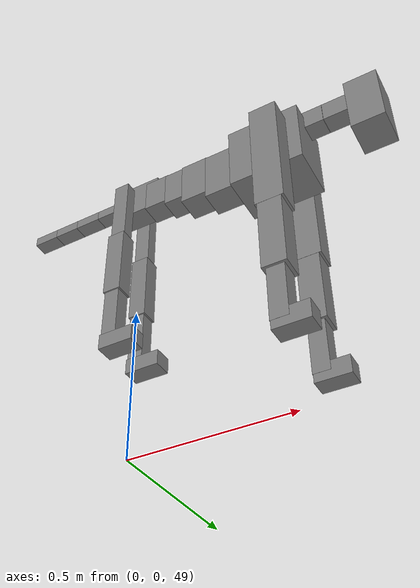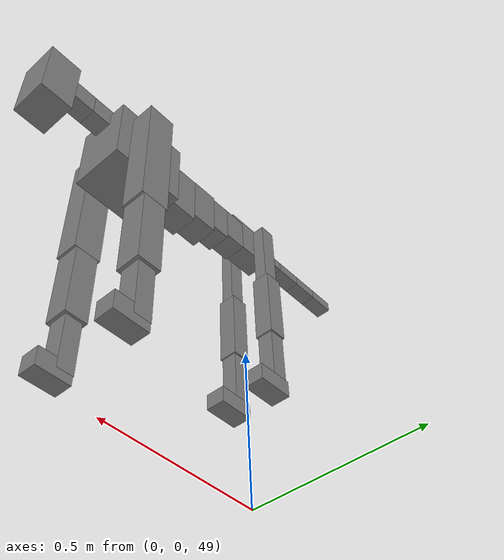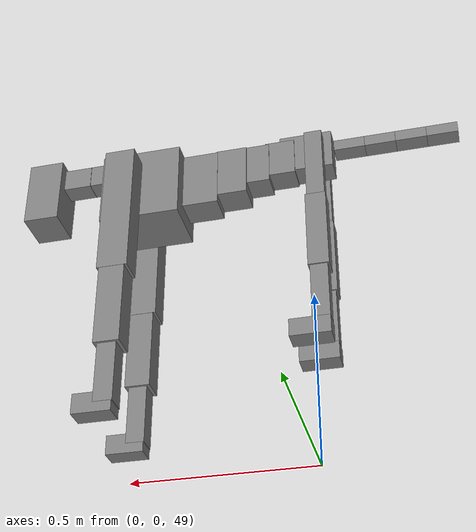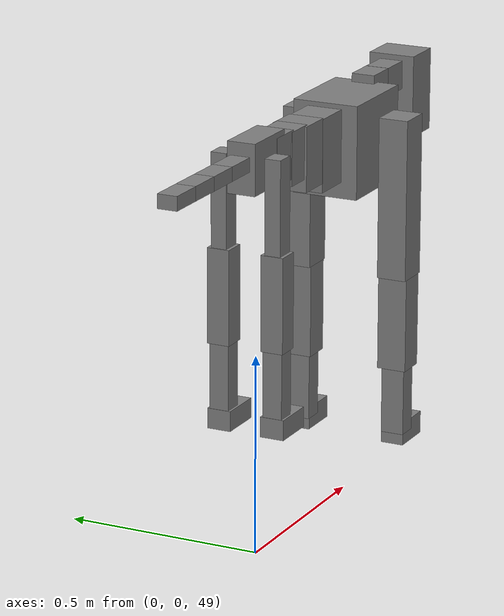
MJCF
<mujoco model="dog">

    <default>
        <joint armature="0.02" stiffness="1" damping="0.2" limited="true"/>
        <geom condim="3" friction="1 0.05 0.05" margin="0.01"/>
        <motor ctrllimited="true" ctrlrange="-1.0 1.0" forcelimited="true" gear="50"/>
    </default>

    <compiler inertiafromgeom="true" angle="radian"/>

    <option timestep="0.016" iterations="50" tolerance="1e-10" solver="Newton" jacobian="dense" cone="pyramidal"/>

    <size nconmax="20000" njmax="60000" nstack="5000000"/>
    <visual>
        <map force="0.1" zfar="30"/>
        <rgba haze="0.15 0.25 0.35 1"/>
        <quality shadowsize="2048"/>
        <global offwidth="800" offheight="800"/>
    </visual>

    <asset>
        <texture type="skybox" builtin="gradient" rgb1="0.3 0.5 0.7" rgb2="0 0 0" width="512" height="512"/>
        <texture name="texplane" type="2d" builtin="checker" rgb1=".2 .3 .4" rgb2=".1 0.15 0.2" width="512" height="512"
                 mark="cross" markrgb=".8 .8 .8"/>
        <texture name="texgeom" type="cube" builtin="flat" mark="cross" width="127" height="1278" rgb1="0.8 0.6 0.4"
                 rgb2="0.8 0.6 0.4" markrgb="1 1 1" random="0.01"/>

        <material name="matplane" reflectance="0.3" texture="texplane" texrepeat="1 1" texuniform="true"/>
        <material name="matgeom" texture="texgeom" texuniform="true" rgba="0.8 0.6 .4 1"/>
    </asset>

    <worldbody>
        <geom name="floor" pos="0 0 0" size="0 0 .25" type="plane" material="matplane" condim="3"/>

        <light directional="false" diffuse=".2 .2 .2" specular="0 0 0" pos="0 0 5" dir="0 0 -1" castshadow="false"/>
        <light mode="targetbodycom" target="torso" directional="false" diffuse=".8 .8 .8" specular="0.3 0.3 0.3"
               pos="0 0 4.0" dir="0 0 -1"/>

        <body name="root" pos="0 0 50">
            <freejoint name="root_1"/>
            <geom type="box" pos="0 0 -0.02" size="0.0774  0.0358  0.063" density="2030"/>

            <body name="spine1" pos="0.054 0 0">
                <joint name="spine1_y" axis="0 1 0" range="0 0.7" limited="true"/>
                <geom type="box" pos="0.02375 0 -0.03" size="0.04375  0.0375  0.05985" density="2030"/>

                <body name="spine2" pos="0.0612 0 0">
                    <joint name="spine2_y" axis="0 1 0" range="-0.15 0.15" limited="true"/>
                    <geom type="box" pos="0.03555  0  -0.04" size="0.04055  0.039  0.06615" density="2030"/>

                    <body name="spine3" pos="0.0730 0 0">
                        <joint name="spine3_y" axis="0 1 0" range="-0.15 0.15" limited="true"/>
                        <geom type="box" pos="0.03555  0  -0.057" size="0.04555  0.0445  0.081" density="2030"/>

                        <body name="spine4" pos="0.0780 0 0">
                            <joint name="spine4_y" axis="0 1 0" range="-0.15 0.15" limited="true"/>
                            <geom type="box" pos="0.05265  0  -0.07" size="0.05265  0.045  0.09135" density="2030"/>

                            <body name="torso" pos="0.1082 0 0">
                                <joint name="torso_y" axis="0 1 0" range="-0.15 0.15" limited="true"/>
                                <geom type="box" pos="0.11925  0  -0.085" size="0.11925  0.085  0.11745"
                                      density="2030"/>

                                <body name="neck1" pos="0.2160  0   0.0180">
                                    <joint name="neck1_y" axis="0 1 0" range="-1.2  -1" limited="true"/>
                                    <geom type="box" pos="0.0423  0  0" size="0.0423  0.03  0.036" density="2325"/>

                                    <body name="neck2" pos="0.0853  0  0">
                                        <joint name="neck2_y" axis="0 1 0" range="0.1  0" limited="true"/>
                                        <geom type="box" pos="0.0423  0  0" size="0.0423  0.03  0.036" density="2325"/>

                                        <body name="head" pos="0.0853  0  0">
                                            <joint name="head_y" axis="0 1 0" range="-0.3  -0.2" limited="true"/>
                                            <geom type="box" pos="0.0531  0  -0.055" size="0.0531  0.06  0.1044"
                                                  density="4030"/>

                                        </body>
                                    </body>
                                </body>

                                <body name="front_shoulder" pos="0.156  0   -0.0480">
                                    <joint name="front_shoulder_y" axis="0 1 0" range="-1 1.5" limited="true"/>
                                    <geom type="box" pos="0 0.13 -0.1769" size="0.0440  0.0376  0.2036" density="1158"/>
                                    <geom type="box" pos="0 -0.13 -0.1769" size="0.0440  0.0376  0.2036"
                                          density="1158"/>

                                    <body name="front_elbow" pos="0  0  -0.3539">
                                        <joint name="front_elbow_y" axis="0 1 0" range="-2 0" limited="true"/>
                                        <geom type="box" pos="0 0.13 -0.1317" size="0.0366  0.0374  0.1317"
                                              density="1081"/>
                                        <geom type="box" pos="0 -0.13 -0.1317" size="0.0366  0.0374  0.1317"
                                              density="1081"/>

                                        <body name="front_wrist" pos="0  0  -0.2634">
                                            <joint name="front_wrist_y" axis="0 1 0" range="-0.2 0" limited="true"/>
                                            <geom type="box" pos="0 0.13 -0.0784" size="0.0266  0.0295  0.0915"
                                                  density="1664"/>
                                            <geom type="box" pos="0 -0.13 -0.0784" size="0.0266  0.0295  0.0915"
                                                  density="1664"/>

                                            <body name="front_finger_end" pos="0  0  -0.1567">
                                                <joint name="front_finger_y" axis="0 1 0" range="-0.4 1"
                                                       limited="true"/>
                                                <geom type="box" pos="0.0294  0.13  -0.0134"
                                                      size="0.0539  0.0294  0.0284" density="1515"/>
                                                <geom type="box" pos="0.0294  -0.13  -0.0134"
                                                      size="0.0539  0.0294  0.0284" density="1515"/>

                                            </body>

                                        </body>
                                    </body>
                                </body>

                            </body>
                        </body>
                    </body>
                </body>
            </body>

            <body name="back_hip" pos="-0.03 0 -0.018">
                <joint name="back_hip_y" axis="0 1 0" range="-1.5 0.3" limited="true"/>
                <geom type="box" pos="0 0.07 -0.1127" size="0.0255  0.0200  0.1355" density="1154"/>
                <geom type="box" pos="0 -0.07 -0.1127" size="0.0255  0.0200  0.1355" density="1154"/>

                <body name="back_knee" pos="0  0  -0.2254">
                    <joint name="back_knee_y" axis="0 1 0" range="0 2.8" limited="true"/>
                    <geom type="box" pos="0 0.07 -0.1025" size="0.0290  0.0286  0.1181" density="1227"/>
                    <geom type="box" pos="0 -0.07 -0.1025" size="0.0290  0.0286  0.1181" density="1227"/>

                    <body name="back_ankle" pos="0  0  -0.2050">
                        <joint name="back_ankle_y" axis="0 1 0" range="-2.2 0" limited="true"/>
                        <geom type="box" pos="0 0.07 -0.0971" size="0.0244  0.0244  0.1084" density="1284"/>
                        <geom type="box" pos="0 -0.07 -0.0971" size="0.0244  0.0244  0.1084" density="1284"/>

                        <body name="back_toe_end" pos="0  0  -0.1942">
                            <joint name="back_toe_y" axis="0 1 0" range="-0.4 1" limited="true"/>
                            <geom type="box" pos="0.0302  0.07  -0.0103" size="0.0555  0.0302  0.0253" density="1515"/>
                            <geom type="box" pos="0.0302  -0.07  -0.0103" size="0.0555  0.0302  0.0253" density="1515"/>

                        </body>
                    </body>
                </body>
            </body>

            <body name="tail1" pos="-0.074 0 -0.006">
                <joint name="tail1_y" axis="0 1 0" range="-0.2 0.2" limited="true"/>
                <geom type="box" pos="-0.0536  0  0" size="0.045  0.025  0.0175" density="1587"/>

                <body name="tail2" pos="-0.09 0 0">
                    <joint name="tail2_y" axis="0 1 0" range="-0.2 0.2" limited="true"/>
                    <geom type="box" pos="-0.0536  0  0" size="0.045  0.025  0.0175" density="1587"/>

                    <body name="tail3" pos="-0.09 0 0">
                        <joint name="tail3_y" axis="0 1 0" range="-0.2 0.2" limited="true"/>
                        <geom type="box" pos="-0.0536  0  0" size="0.045  0.025  0.0175" density="1587"/>

                        <body name="tail4" pos="-0.09 0 0">
                            <joint name="tail4_y" axis="0 1 0" range="-0.2 0.2" limited="true"/>
                            <geom type="box" pos="-0.0536  0  0" size="0.045  0.025  0.0175" density="1587"/>

                        </body>
                    </body>
                </body>
            </body>
        </body>
    </worldbody>

    <actuator>
        <motor joint="spine1_y" forcerange="-150 150     "/>
        <motor joint="spine2_y" forcerange="-150 150     "/>
        <motor joint="spine3_y" forcerange="-150 150     "/>
        <motor joint="spine4_y" forcerange="-150 150     "/>
        <motor joint="torso_y" forcerange="-150 150     "/>
        <motor joint="neck1_y" forcerange="-100 100       "/>
        <motor joint="neck2_y" forcerange="-100 100       "/>
        <motor joint="head_y" forcerange="-150 150       "/>
        <motor joint="front_shoulder_y" forcerange="-178.02 172.82"/>
        <motor joint="front_elbow_y" forcerange="-194.53 177.34"/>
        <motor joint="front_wrist_y" forcerange="-144.64 91.68"/>
        <motor joint="front_finger_y" forcerange="-31.56 85.26"/>
        <motor joint="back_hip_y" forcerange="-211.29 255.33"/>
        <motor joint="back_knee_y" forcerange="-335.59 280.64"/>
        <motor joint="back_angle_y" forcerange="-85.51 205.00"/>
        <motor joint="back_toe_y" forcerange="-71.34 90.63"/>
        <motor joint="tail1_y" forcerange="-50 50     "/>
        <motor joint="tail2_y" forcerange="-50 50     "/>
        <motor joint="tail3_y" forcerange="-50 50     "/>
        <motor joint="tail4_y" forcerange="-50 50     "/>
    </actuator>
</mujoco>
